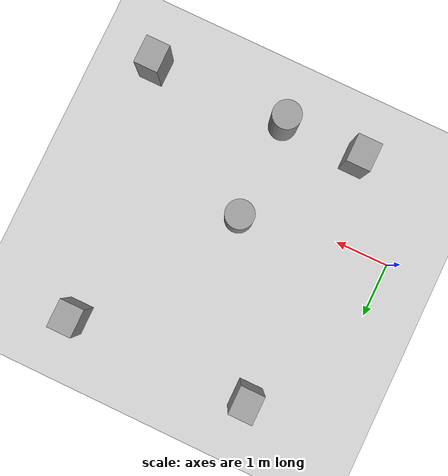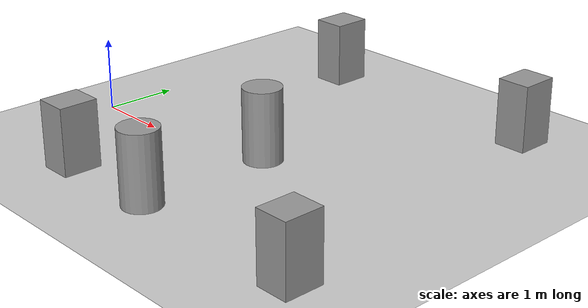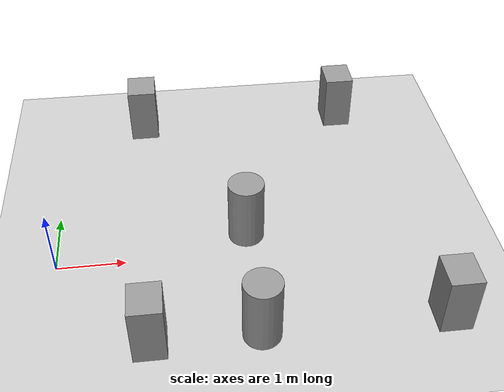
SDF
<sdf version="1.7">
 <world name="default">
  <light name="sun" type="directional">
   <pose>0 0 10 0 -0 0</pose>
   <diffuse>0.8 0.8 0.8 1</diffuse>
   <specular>0.2 0.2 0.2 1</specular>
   <attenuation>
    <range>1000</range>
    <constant>0.9</constant>
    <linear>0.01</linear>
    <quadratic>0.001</quadratic>
   </attenuation>
   <direction>-0.5 0.1 -0.9</direction>
   <spot><inner_angle>0</inner_angle><outer_angle>0</outer_angle><falloff>0</falloff></spot>
  </light>
  <model name="ground_plane">
   <static>1</static>
   <link name="link">
    <collision name="collision">
     <geometry><plane><normal>0 0 1</normal><size>100 100</size></plane></geometry>
     <surface><friction><ode><mu>100</mu><mu2>50</mu2></ode></friction></surface>
    </collision>
    <visual name="visual">
     <cast_shadows>0</cast_shadows>
     <geometry><plane><normal>0 0 1</normal><size>100 100</size></plane></geometry>
     <material>
      <script><uri>file://media/materials/scripts/gazebo.material</uri><name>Gazebo/Grey</name></script>
     </material>
    </visual>
   </link>
  </model>
  <gravity>0 0 -9.8</gravity>
  <magnetic_field>6e-06 2.3e-05 -4.2e-05</magnetic_field>
  <atmosphere type="adiabatic"/>
  <physics name="default_physics" default="0" type="ode">
   <max_step_size>0.001</max_step_size>
   <real_time_factor>1</real_time_factor>
   <real_time_update_rate>1000</real_time_update_rate>
  </physics>
  <scene><ambient>0.4 0.4 0.4 1</ambient><background>0.7 0.7 0.7 1</background><shadows>1</shadows></scene>
  <spherical_coordinates>
   <surface_model>EARTH_WGS84</surface_model>
   <latitude_deg>0</latitude_deg>
   <longitude_deg>0</longitude_deg>
   <elevation>0</elevation>
   <heading_deg>0</heading_deg>
  </spherical_coordinates>
  <model name="unit_box_clone" type="fixed">
   <pose>1.31886 3.22576 0.454826 8e-06 0.000231 -0.000296</pose>
   <link name="link">
    <inertial>
     <mass>1000</mass>
     <inertia>
      <ixx>0.166667</ixx>
      <ixy>0</ixy>
      <ixz>0</ixz>
      <iyy>0.166667</iyy>
      <iyz>0</iyz>
      <izz>0.166667</izz>
     </inertia>
    </inertial>
    <collision name="collision">
     <geometry><box><size>0.451569 0.525599 0.909747</size></box></geometry>
    </collision>
    <visual name="visual">
     <geometry><box><size>0.451569 0.525599 0.909747</size></box></geometry>
     <material>
      <script><name>Gazebo/Grey</name><uri>file://media/materials/scripts/gazebo.material</uri></script>
     </material>
    </visual>
   </link>
  </model>
  <model name="unit_box_clone_0" type="fixed">
   <pose>5.35304 -1.48819 0.454842 -5e-06 0.000226 -0.000502</pose>
   <link name="link">
    <inertial>
     <mass>1000</mass>
     <inertia>
      <ixx>0.166667</ixx>
      <ixy>0</ixy>
      <ixz>0</ixz>
      <iyy>0.166667</iyy>
      <iyz>0</iyz>
      <izz>0.166667</izz>
     </inertia>
    </inertial>
    <collision name="collision">
     <geometry><box><size>0.451569 0.525599 0.909747</size></box></geometry>
    </collision>
    <visual name="visual">
     <geometry><box><size>0.451569 0.525599 0.909747</size></box></geometry>
     <material>
      <script><name>Gazebo/Grey</name><uri>file://media/materials/scripts/gazebo.material</uri></script>
     </material>
    </visual>
   </link>
  </model>
  <model name="unit_box_clone_1" type="fixed">
   <pose>4.6962 3.22583 0.454842 -5e-06 0.000226 -0.000502</pose>
   <link name="link">
    <inertial>
     <mass>1000</mass>
     <inertia>
      <ixx>0.166667</ixx>
      <ixy>0</ixy>
      <ixz>0</ixz>
      <iyy>0.166667</iyy>
      <iyz>0</iyz>
      <izz>0.166667</izz>
     </inertia>
    </inertial>
    <collision name="collision">
     <geometry><box><size>0.451569 0.525599 0.909747</size></box></geometry>
    </collision>
    <visual name="visual">
     <geometry><box><size>0.451569 0.525599 0.909747</size></box></geometry>
     <material>
      <script><name>Gazebo/Grey</name><uri>file://media/materials/scripts/gazebo.material</uri></script>
     </material>
    </visual>
   </link>
  </model>
  <model name="unit_cylinder_clone" type="fixed">
   <pose>2.79113 -1.50414 0.499977 0.000112 7.5e-05 0.149263</pose>
   <link name="link">
    <inertial>
     <mass>1000</mass>
     <inertia><ixx>0.145833</ixx><ixy>0</ixy><ixz>0</ixz><iyy>0.145833</iyy><iyz>0</iyz><izz>0.125</izz></inertia>
    </inertial>
    <collision name="collision">
     <geometry><cylinder><radius>0.263673</radius><length>1</length></cylinder></geometry>
    </collision>
    <visual name="visual">
     <geometry><cylinder><radius>0.263673</radius><length>1</length></cylinder></geometry>
     <material>
      <script><name>Gazebo/Grey</name><uri>file://media/materials/scripts/gazebo.material</uri></script>
     </material>
    </visual>
   </link>
  </model>
  <model name="unit_box_clone_0_clone" type="fixed">
   <pose>1.31885 -1.50017 0.454836 -7e-06 0.000231 -0.000415</pose>
   <link name="link">
    <inertial>
     <mass>1000</mass>
     <inertia>
      <ixx>0.166667</ixx>
      <ixy>0</ixy>
      <ixz>0</ixz>
      <iyy>0.166667</iyy>
      <iyz>0</iyz>
      <izz>0.166667</izz>
     </inertia>
    </inertial>
    <collision name="collision">
     <geometry><box><size>0.451569 0.525599 0.909747</size></box></geometry>
    </collision>
    <visual name="visual">
     <geometry><box><size>0.451569 0.525599 0.909747</size></box></geometry>
     <material>
      <script><name>Gazebo/Grey</name><uri>file://media/materials/scripts/gazebo.material</uri></script>
     </material>
    </visual>
   </link>
  </model>
  <model name="unit_cylinder_clone_clone" type="fixed">
   <pose>2.79079 0.382971 0.499965 0.000107 7.7e-05 0.154785</pose>
   <link name="link">
    <inertial>
     <mass>1000</mass>
     <inertia><ixx>0.145833</ixx><ixy>0</ixy><ixz>0</ixz><iyy>0.145833</iyy><iyz>0</iyz><izz>0.125</izz></inertia>
    </inertial>
    <collision name="collision">
     <geometry><cylinder><radius>0.263673</radius><length>1</length></cylinder></geometry>
    </collision>
    <visual name="visual">
     <geometry><cylinder><radius>0.263673</radius><length>1</length></cylinder></geometry>
     <material>
      <script><name>Gazebo/Grey</name><uri>file://media/materials/scripts/gazebo.material</uri></script>
     </material>
    </visual>
   </link>
  </model>
 </world>
</sdf>
